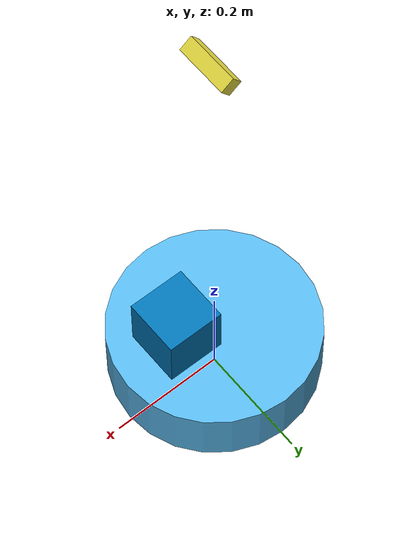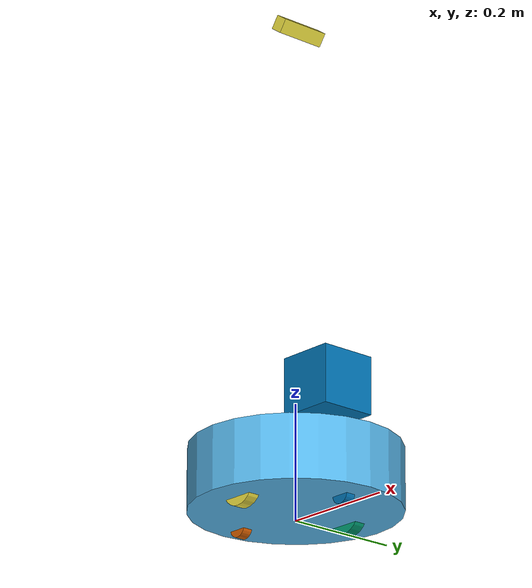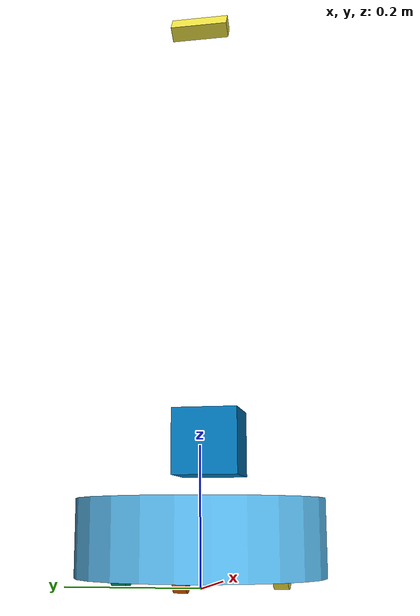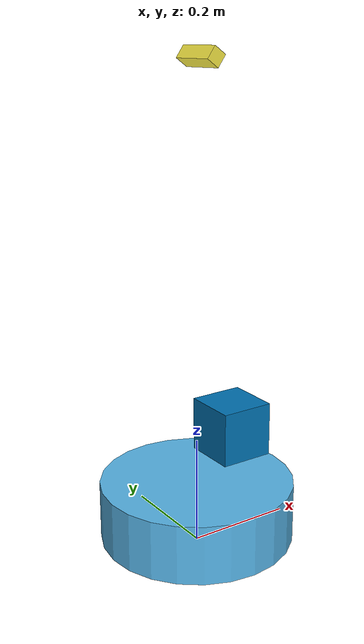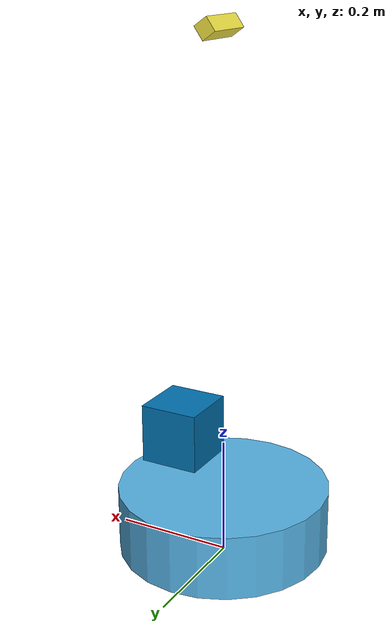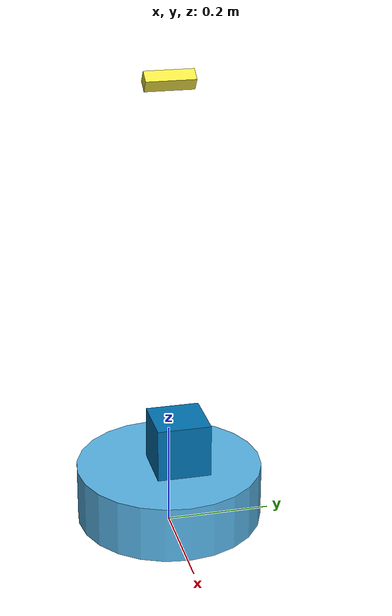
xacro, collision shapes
<?xml version="1.0" ?>
<robot name="kobuki"
       xmlns:sensor="http://playerstage.sourceforge.net/gazebo/xmlschema/#sensor"
       xmlns:controller="http://playerstage.sourceforge.net/gazebo/xmlschema/#controller"
       xmlns:interface="http://playerstage.sourceforge.net/gazebo/xmlschema/#interface"
       xmlns:xacro="http://ros.org/wiki/xacro">

  <!-- Defines the Jaime component tag. -->
  <xacro:include filename="$(find jaime_description)/urdf/jaime.urdf.xacro" />

  <xacro:kobuki/>
</robot>

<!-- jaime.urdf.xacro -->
<robot name="kobuki" xmlns:xacro="http://ros.org/wiki/xacro">
  <xacro:include filename="$(find jaime_description)/urdf/common_properties.urdf.xacro"/>
  <xacro:include filename="$(find jaime_description)/urdf/jaime_sensors_properties.urdf.xacro"/>
  <xacro:include filename="$(find jaime_description)/urdf/jaime_gazebo.urdf.xacro"/>

  <!-- Kobuki -->
  <xacro:macro name="kobuki">
    <link name="base_footprint"/>
    <joint name="base_joint" type="fixed">
      <origin xyz="0 0 0.0102" rpy="0 0 0" />
      <parent link="base_footprint"/>
      <child link="base_link" />
    </joint>
    <link name="base_link">
      <visual>
        <geometry>
          <!-- new mesh -->
          <mesh filename="package://jaime_description/meshes/main_body.dae" />
        </geometry>
        <origin xyz="0.001 0 0.05199" rpy="0 0 0"/>
      </visual>
      <collision name="base">
        <geometry>
          <cylinder length="0.10938" radius="0.178"/>
        </geometry>
        <origin xyz="0.0 0 0.05949" rpy="0 0 0"/>
      </collision>
      <inertial>
        <!-- COM experimentally determined -->
        <origin xyz="0.01 0 0"/>
        <mass value="2.4"/> <!-- 2.4/2.6 kg for small/big battery pack -->
        <inertia ixx="0.019995" ixy="0.0" ixz="0.0"
                 iyy="0.019995" iyz="0.0"
                 izz="0.03675" />
      </inertial>
    </link>

    <joint name="wheel_left_joint" type="continuous">
      <parent link="base_link"/>
      <child link="wheel_left_link"/>
      <origin xyz="0.00 ${0.23/2} 0.0250" rpy="${-M_PI/2} 0 0"/>
      <axis xyz="0 0 1"/>
    </joint>
    <link name="wheel_left_link">
      <visual>
        <geometry>
          <mesh filename="package://jaime_description/meshes/wheel.dae"/>
        </geometry>
        <origin xyz="0 0 0" rpy="0 0 0"/>
      </visual>
      <collision>
        <geometry>
          <cylinder length="0.0206" radius="0.0352"/>
        </geometry>
        <origin rpy="0 0 0" xyz="0 0 0"/>
      </collision>
      <inertial>
        <mass value="0.01" />
        <origin xyz="0 0 0" />
        <inertia ixx="0.001" ixy="0.0" ixz="0.0"
                 iyy="0.001" iyz="0.0"
                 izz="0.001" />
      </inertial>
    </link>

    <joint name="wheel_right_joint" type="continuous">
      <parent link="base_link"/>
      <child link="wheel_right_link"/>
      <origin xyz="0.00 -${0.23/2} 0.0250" rpy="${-M_PI/2} 0 0"/>
      <axis xyz="0 0 1"/>
    </joint>
    <link name="wheel_right_link">
      <visual>
        <geometry>
          <mesh filename="package://jaime_description/meshes/wheel.dae"/>
        </geometry>
        <origin xyz="0 0 0" rpy="0 0 0"/>
      </visual>
      <collision>
        <geometry>
          <cylinder length="0.0206" radius="0.0350"/>
        </geometry>
        <origin rpy="0 0 0" xyz="0 0 0"/>
      </collision>
      <inertial>
        <mass value="0.01" />
        <origin xyz="0 0 0" />
        <inertia ixx="0.001" ixy="0.0" ixz="0.0"
                 iyy="0.001" iyz="0.0"
                 izz="0.001" />
      </inertial>
    </link>

    <joint name="caster_front_joint" type="fixed">
      <parent link="base_link"/>
      <child link="caster_front_link"/>
      <origin xyz="0.115 0.0 0.007" rpy="${-M_PI/2} 0 0"/>
    </joint>
    <link name="caster_front_link">
      <collision>
        <geometry>
          <cylinder length="0.0176" radius="0.017"/>
        </geometry>
        <origin rpy="0 0 0" xyz="0 0 0"/>
      </collision>
      <inertial>
        <mass value="0.01" />
        <origin xyz="0 0 0" />
        <inertia ixx="0.001" ixy="0.0" ixz="0.0"
                 iyy="0.001" iyz="0.0"
                 izz="0.001" />
      </inertial>
    </link>

    <joint name="caster_back_joint" type="fixed">
      <parent link="base_link"/>
      <child link="caster_back_link"/>
      <origin xyz="-0.135 0.0 0.009" rpy="${-M_PI/2} 0 0"/>
    </joint>
    <link name="caster_back_link">
      <collision>
        <geometry>
          <cylinder length="0.0176" radius="0.017"/>
        </geometry>
        <origin rpy="0 0 0" xyz="0 0 0"/>
      </collision>
      <inertial>
        <mass value="0.01" />
        <origin xyz="0 0 0" />
        <inertia ixx="0.001" ixy="0.0" ixz="0.0"
                 iyy="0.001" iyz="0.0"
                 izz="0.001" />
      </inertial>
    </link>

    <!-- Kobuki's sensors -->
    <joint name="gyro_joint" type="fixed">
      <axis xyz="0 1 0"/>
      <origin xyz="0.056 0.062 0.0202" rpy="0 0 0"/>
      <parent link="base_link"/>
      <child link="gyro_link"/>
    </joint>
    <link name="gyro_link">
      <inertial>
        <mass value="0.001"/>
        <origin xyz="0 0 0" rpy="0 0 0"/>
        <inertia ixx="0.0001" ixy="0" ixz="0"
                 iyy="0.000001" iyz="0"
                 izz="0.0001"/>
      </inertial>
    </link>

    <joint name="cliff_sensor_left_joint" type="fixed">
      <origin xyz="0.08734 0.13601 0.0214" rpy="0 ${M_PI/2} 0" />
      <parent link="base_link"/>
      <child link="cliff_sensor_left_link" />
    </joint>
    <link name="cliff_sensor_left_link">
      <inertial>
        <mass value="0.0001" />
        <origin xyz="0 0 0" />
        <inertia ixx="0.0001" ixy="0.0" ixz="0.0"
                 iyy="0.0001" iyz="0.0"
                 izz="0.0001" />
      </inertial>
    </link>

    <joint name="cliff_sensor_right_joint" type="fixed">
      <origin xyz="0.085 -0.13601 0.0214" rpy="0 ${M_PI/2} 0" />
      <parent link="base_link"/>
      <child link="cliff_sensor_right_link" />
    </joint>
    <link name="cliff_sensor_right_link">
      <inertial>
        <mass value="0.0001" />
        <origin xyz="0 0 0" />
        <inertia ixx="0.0001" ixy="0.0" ixz="0.0"
                 iyy="0.0001" iyz="0.0"
                 izz="0.0001" />
      </inertial>
    </link>

    <joint name="cliff_sensor_front_joint" type="fixed">
      <origin xyz="0.156 0.00 0.0214" rpy="0 ${M_PI/2} 0" />
      <parent link="base_link"/>
      <child link="cliff_sensor_front_link" />
    </joint>
    <link name="cliff_sensor_front_link">
      <inertial>
        <mass value="0.0001" />
        <origin xyz="0 0 0" />
        <inertia ixx="0.0001" ixy="0.0" ixz="0.0"
                 iyy="0.0001" iyz="0.0"
                 izz="0.0001" />
      </inertial>
    </link>    <!-- uso del lidar -->

<!-- depth camera -->

    <!-- camera body, with origin at bottom screw mount -->
    <joint name="camera_joint" type="fixed">
      <origin xyz="0.0 0.0 0.85" rpy="0 0.610865 0"/>
      <parent link="base_link"/>
      <child link="camera_bottom_screw_frame" />
    </joint>
    <link name="camera_bottom_screw_frame"/>

    <joint name="camera_link_joint" type="fixed">
      <origin xyz="0 ${d435_cam_depth_py} ${d435_cam_depth_pz}" rpy="0 0 0"/>
      <parent link="camera_bottom_screw_frame"/>
      <child link="camera_link" />
    </joint>

    <link name="camera_link">
      <visual>
      <origin xyz="${d435_cam_mount_from_center_offset} ${-d435_cam_depth_py} 0" rpy="${M_PI/2} 0 ${M_PI/2}"/>
        <geometry>
          <mesh filename="package://jaime_description/meshes/d435.dae" />
        </geometry>
      </visual>
      <collision>
        <origin xyz="0 ${-d435_cam_depth_py} 0" rpy="0 0 0"/>
        <geometry>
        <box size="${d435_cam_depth} ${d435_cam_width} ${d435_cam_height}"/>
        </geometry>
      </collision>
      <inertial>
        <!-- The following are not reliable values, and should not be used for modeling -->
        <mass value="0.564" />
        <origin xyz="0 0 0" />
        <inertia ixx="0.003881243" ixy="0.0" ixz="0.0" iyy="0.000498940" iyz="0.0" izz="0.003879257" />
      </inertial>
    </link>

 <!-- camera depth joints and links -->
  <joint name="camera_depth_joint" type="fixed">
    <origin xyz="0 0 0" rpy="0 0 0"/>
    <parent link="camera_link"/>
    <child link="camera_depth_frame" />
  </joint>
  <link name="camera_depth_frame"/>

  <joint name="camera_depth_optical_joint" type="fixed">
    <origin xyz="0 0 0" rpy="${-M_PI/2} 0 ${-M_PI/2}" />
    <parent link="camera_depth_frame" />
    <child link="camera_depth_optical_frame" />
  </joint>
  <link name="camera_depth_optical_frame"/>

<!-- camera left IR joints and links -->
<joint name="camera_left_ir_joint" type="fixed">
  <origin xyz="0 ${d435_cam_depth_to_left_ir_offset} 0" rpy="0 0 0" />
  <parent link="camera_depth_frame" />
  <child link="camera_left_ir_frame" />
</joint>
<link name="camera_left_ir_frame"/>

<joint name="camera_left_ir_optical_joint" type="fixed">
  <origin xyz="0 0 0" rpy="${-M_PI/2} 0 ${-M_PI/2}" />
  <parent link="camera_left_ir_frame" />
  <child link="camera_left_ir_optical_frame" />
</joint>
<link name="camera_left_ir_optical_frame"/>

<!-- camera right IR joints and links -->
<joint name="camera_right_ir_joint" type="fixed">
  <origin xyz="0 ${d435_cam_depth_to_right_ir_offset} 0" rpy="0 0 0" />
  <parent link="camera_depth_frame" />
  <child link="camera_right_ir_frame" />
</joint>
<link name="camera_right_ir_frame"/>

<joint name="camera_right_ir_optical_joint" type="fixed">
  <origin xyz="0 0 0" rpy="${-M_PI/2} 0 ${-M_PI/2}" />
  <parent link="camera_right_ir_frame" />
  <child link="camera_right_ir_optical_frame" />
</joint>
<link name="camera_right_ir_optical_frame"/>

<!-- camera color joints and links -->
<joint name="camera_color_joint" type="fixed">
  <origin xyz="0 ${d435_cam_depth_to_color_offset} 0" rpy="0 0 0" />
  <parent link="camera_depth_frame" />
  <child link="camera_color_frame" />
</joint>
<link name="camera_color_frame"/>

<joint name="camera_color_optical_joint" type="fixed">
  <origin xyz="0 0 0" rpy="${-M_PI/2} 0 ${-M_PI/2}" />
  <parent link="camera_color_frame" />
  <child link="camera_color_optical_frame" />
</joint>
<link name="camera_color_optical_frame"/>

<!-- Hokuyo Laser -->
<link name="laser">
  <collision>
    <origin xyz="0 0 0" rpy="0 0 0"/>
    <geometry>
  <box size="0.1 0.1 0.1"/>
    </geometry>
  </collision>

  <visual>
    <origin xyz="0 0 0" rpy="0 0 0"/>
    <geometry>
      <mesh filename="package://jaime_description/meshes/hokuyo.dae" />
    </geometry>
  </visual>

  <inertial>
    <mass value="1e-5" />
    <origin xyz="0 0 0" rpy="0 0 0"/>
    <inertia ixx="1e-6" ixy="0" ixz="0" iyy="1e-6" iyz="0" izz="1e-6" />
  </inertial>
</link>

  <joint name="hokuyo_joint" type="fixed">
    <origin xyz="0.0775 0 0.2"/>
    <parent link="base_link"/>
    <child link="laser"/>
  </joint>

  <link name="laser_frame"/>

  <joint name="laser_joint" type="fixed">
    <origin xyz="0 0 0.064"/>
    <parent link="laser"/>
    <child link="laser_frame"/>
  </joint>

<!-- uso del lidar -->

    <!-- Kobuki Gazebo simulation details -->
    <kobuki_sim/>

  </xacro:macro>
</robot>

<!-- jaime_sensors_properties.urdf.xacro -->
<robot name="jaime_sensors_properties" xmlns:xacro="http://ros.org/wiki/xacro">
    <xacro:property name="M_PI" value="3.1415926535897931" />

    <!-- DEPTH CAMERA PROPERTIES-->
    <!-- The following values are approximate, and the camera node
    publishing TF values with actual calibrated camera extrinsic values -->
    <xacro:property name="d435_cam_depth_to_left_ir_offset" value="0.0"/>
    <xacro:property name="d435_cam_depth_to_right_ir_offset" value="-0.050"/>
    <xacro:property name="d435_cam_depth_to_color_offset" value="0.015"/>

    <!-- The following values model the aluminum peripherial case for the
    D435 camera, with the camera joint represented by the actual
    peripherial camera tripod mount -->
    <xacro:property name="d435_cam_width" value="0.090"/>
    <xacro:property name="d435_cam_height" value="0.025"/>
    <xacro:property name="d435_cam_depth" value="0.02505"/>
    <xacro:property name="d435_cam_mount_from_center_offset" value="0.0149"/>

    <!-- The following offset is relative the the physical D435 camera peripherial
    camera tripod mount -->
    <xacro:property name="d435_cam_depth_px" value="${d435_cam_mount_from_center_offset}"/>
    <xacro:property name="d435_cam_depth_py" value="0.0175"/>
    <xacro:property name="d435_cam_depth_pz" value="${d435_cam_height/2}"/>

</robot>
